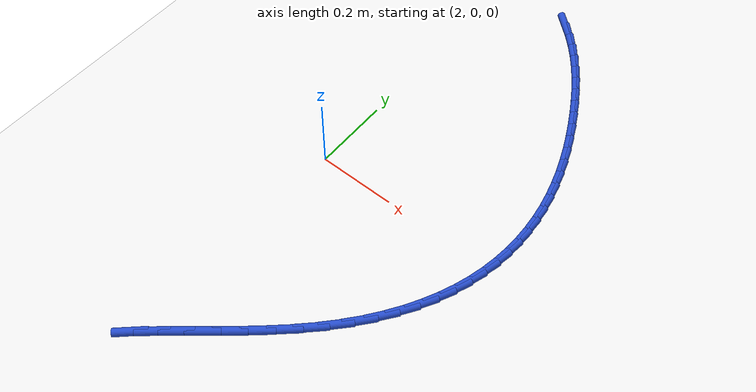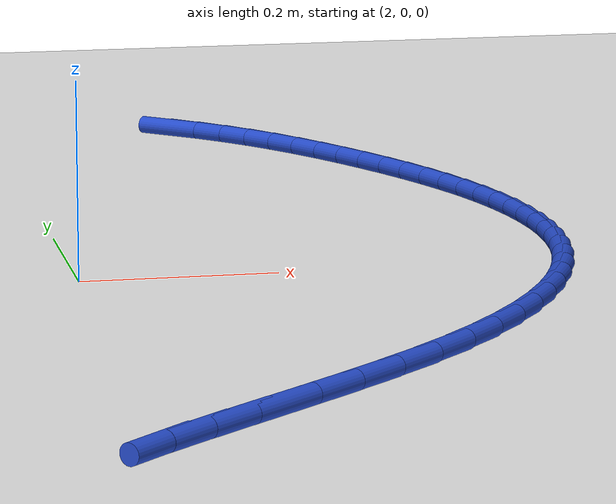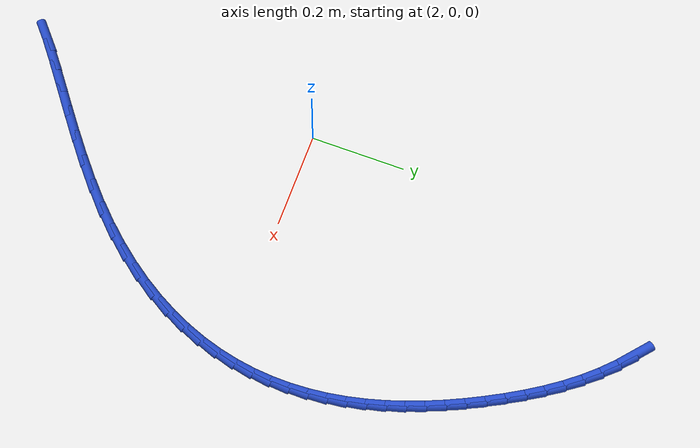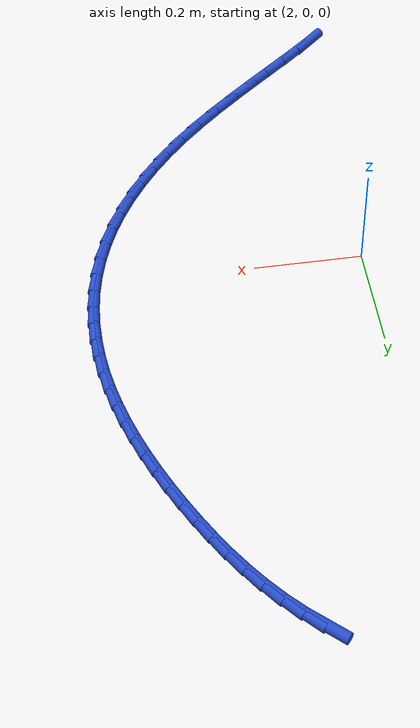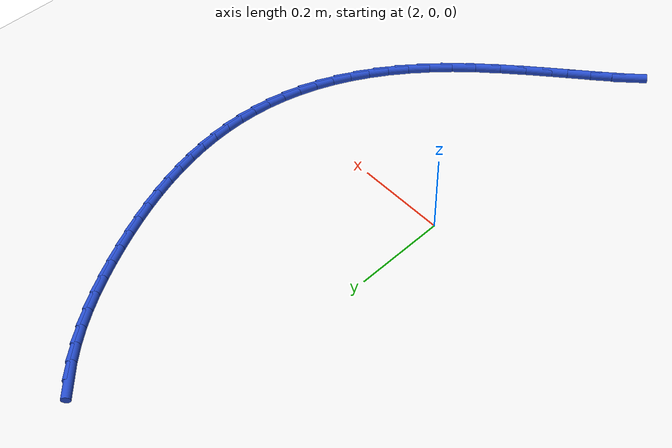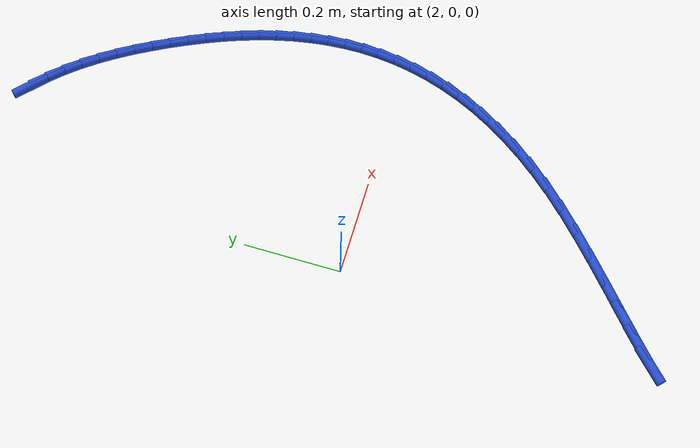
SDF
<sdf version="1.6">
 <world name="default">
  <model name="ground_plane">
   <static>1</static>
   <link name="link">
    <collision name="collision">
     <geometry><plane><normal>0 0 1</normal><size>100 100</size></plane></geometry>
     <surface><friction><ode><mu>100</mu><mu2>50</mu2></ode></friction></surface>
    </collision>
    <visual name="visual">
     <cast_shadows>0</cast_shadows>
     <geometry><plane><normal>0 0 1</normal><size>100 100</size></plane></geometry>
     <material>
      <script><uri>file://media/materials/scripts/gazebo.material</uri><name>Gazebo/WhiteGlow</name></script>
     </material>
    </visual>
   </link>
  </model>
  <model name="line">
   <link name="link_96">
    <pose>2.2099744098896 0.7450040336899306 0.01 0 1.57 -0.7302077535805038</pose>
    <collision name="collision">
     <geometry><cylinder><radius>0.01</radius><length>0.08</length></cylinder></geometry>
    </collision>
    <visual name="visual">
     <material>
      <script><name>Gazebo/Blue</name><uri>file://media/materials/scripts/gazebo.material</uri></script>
     </material>
     <geometry><cylinder><radius>0.01</radius><length>0.08</length></cylinder></geometry>
    </visual>
   </link>
   <link name="link_97">
    <pose>2.2385784189707834 0.7193951006987568 0.01 0 1.57 -0.7990456258027642</pose>
    <collision name="collision">
     <geometry><cylinder><radius>0.01</radius><length>0.08</length></cylinder></geometry>
    </collision>
    <visual name="visual">
     <material>
      <script><name>Gazebo/Blue</name><uri>file://media/materials/scripts/gazebo.material</uri></script>
     </material>
     <geometry><cylinder><radius>0.01</radius><length>0.08</length></cylinder></geometry>
    </visual>
   </link>
   <link name="link_98">
    <pose>2.265349913055908 0.691882723523531 0.01 0 1.57 -0.861361658678026</pose>
    <collision name="collision">
     <geometry><cylinder><radius>0.01</radius><length>0.08</length></cylinder></geometry>
    </collision>
    <visual name="visual">
     <material>
      <script><name>Gazebo/Blue</name><uri>file://media/materials/scripts/gazebo.material</uri></script>
     </material>
     <geometry><cylinder><radius>0.01</radius><length>0.08</length></cylinder></geometry>
    </visual>
   </link>
   <link name="link_99">
    <pose>2.2904118224949865 0.6626916201015031 0.01 0 1.57 -0.9171109996088366</pose>
    <collision name="collision">
     <geometry><cylinder><radius>0.01</radius><length>0.08</length></cylinder></geometry>
    </collision>
    <visual name="visual">
     <material>
      <script><name>Gazebo/Blue</name><uri>file://media/materials/scripts/gazebo.material</uri></script>
     </material>
     <geometry><cylinder><radius>0.01</radius><length>0.08</length></cylinder></geometry>
    </visual>
   </link>
   <link name="link_100">
    <pose>2.3138870776380314 0.6320465083699249 0.01 0 1.57 -0.9664267605133154</pose>
    <collision name="collision">
     <geometry><cylinder><radius>0.01</radius><length>0.08</length></cylinder></geometry>
    </collision>
    <visual name="visual">
     <material>
      <script><name>Gazebo/Blue</name><uri>file://media/materials/scripts/gazebo.material</uri></script>
     </material>
     <geometry><cylinder><radius>0.01</radius><length>0.08</length></cylinder></geometry>
    </visual>
   </link>
   <link name="link_101">
    <pose>2.3358986088350573 0.6001721062660461 0.01 0 1.57 -1.009546726760588</pose>
    <collision name="collision">
     <geometry><cylinder><radius>0.01</radius><length>0.08</length></cylinder></geometry>
    </collision>
    <visual name="visual">
     <material>
      <script><name>Gazebo/Blue</name><uri>file://media/materials/scripts/gazebo.material</uri></script>
     </material>
     <geometry><cylinder><radius>0.01</radius><length>0.08</length></cylinder></geometry>
    </visual>
   </link>
   <link name="link_102">
    <pose>2.356569346436075 0.567293131727118 0.01 0 1.57 -1.0467533460196503</pose>
    <collision name="collision">
     <geometry><cylinder><radius>0.01</radius><length>0.08</length></cylinder></geometry>
    </collision>
    <visual name="visual">
     <material>
      <script><name>Gazebo/Blue</name><uri>file://media/materials/scripts/gazebo.material</uri></script>
     </material>
     <geometry><cylinder><radius>0.01</radius><length>0.08</length></cylinder></geometry>
    </visual>
   </link>
   <link name="link_103">
    <pose>2.376022220791101 0.5336343026903909 0.01 0 1.57 -1.078332419767399</pose>
    <collision name="collision">
     <geometry><cylinder><radius>0.01</radius><length>0.08</length></cylinder></geometry>
    </collision>
    <visual name="visual">
     <material>
      <script><name>Gazebo/Blue</name><uri>file://media/materials/scripts/gazebo.material</uri></script>
     </material>
     <geometry><cylinder><radius>0.01</radius><length>0.08</length></cylinder></geometry>
    </visual>
   </link>
   <link name="link_104">
    <pose>2.3943800308982817 0.49942022516066953 0.01 0 1.57 -1.1065879782315884</pose>
    <collision name="collision">
     <geometry><cylinder><radius>0.01</radius><length>0.08</length></cylinder></geometry>
    </collision>
    <visual name="visual">
     <material>
      <script><name>Gazebo/Blue</name><uri>file://media/materials/scripts/gazebo.material</uri></script>
     </material>
     <geometry><cylinder><radius>0.01</radius><length>0.08</length></cylinder></geometry>
    </visual>
   </link>
   <link name="link_105">
    <pose>2.41170321765218 0.464822366230679 0.01 0 1.57 -1.1370400719894822</pose>
    <collision name="collision">
     <geometry><cylinder><radius>0.01</radius><length>0.08</length></cylinder></geometry>
    </collision>
    <visual name="visual">
     <material>
      <script><name>Gazebo/Blue</name><uri>file://media/materials/scripts/gazebo.material</uri></script>
     </material>
     <geometry><cylinder><radius>0.01</radius><length>0.08</length></cylinder></geometry>
    </visual>
   </link>
   <link name="link_106">
    <pose>2.427890326713249 0.42987423279045006 0.01 0 1.57 -1.170687186168735</pose>
    <collision name="collision">
     <geometry><cylinder><radius>0.01</radius><length>0.08</length></cylinder></geometry>
    </collision>
    <visual name="visual">
     <material>
      <script><name>Gazebo/Blue</name><uri>file://media/materials/scripts/gazebo.material</uri></script>
     </material>
     <geometry><cylinder><radius>0.01</radius><length>0.08</length></cylinder></geometry>
    </visual>
   </link>
   <link name="link_107">
    <pose>2.4428139708779084 0.3945872328510779 0.01 0 1.57 -1.2076665442976666</pose>
    <collision name="collision">
     <geometry><cylinder><radius>0.01</radius><length>0.08</length></cylinder></geometry>
    </collision>
    <visual name="visual">
     <material>
      <script><name>Gazebo/Blue</name><uri>file://media/materials/scripts/gazebo.material</uri></script>
     </material>
     <geometry><cylinder><radius>0.01</radius><length>0.08</length></cylinder></geometry>
    </visual>
   </link>
   <link name="link_108">
    <pose>2.4563467629425797 0.35897277442365755 0.01 0 1.57 -1.2481013349724457</pose>
    <collision name="collision">
     <geometry><cylinder><radius>0.01</radius><length>0.08</length></cylinder></geometry>
    </collision>
    <visual name="visual">
     <material>
      <script><name>Gazebo/Blue</name><uri>file://media/materials/scripts/gazebo.material</uri></script>
     </material>
     <geometry><cylinder><radius>0.01</radius><length>0.08</length></cylinder></geometry>
    </visual>
   </link>
   <link name="link_109">
    <pose>2.4683613157036826 0.3230422655192855 0.01 0 1.57 -1.292087820820157</pose>
    <collision name="collision">
     <geometry><cylinder><radius>0.01</radius><length>0.08</length></cylinder></geometry>
    </collision>
    <visual name="visual">
     <material>
      <script><name>Gazebo/Blue</name><uri>file://media/materials/scripts/gazebo.material</uri></script>
     </material>
     <geometry><cylinder><radius>0.01</radius><length>0.08</length></cylinder></geometry>
    </visual>
   </link>
   <link name="link_110">
    <pose>2.4787302419576376 0.2868071141490565 0.01 0 1.57 -1.3396797657786215</pose>
    <collision name="collision">
     <geometry><cylinder><radius>0.01</radius><length>0.08</length></cylinder></geometry>
    </collision>
    <visual name="visual">
     <material>
      <script><name>Gazebo/Blue</name><uri>file://media/materials/scripts/gazebo.material</uri></script>
     </material>
     <geometry><cylinder><radius>0.01</radius><length>0.08</length></cylinder></geometry>
    </visual>
   </link>
   <link name="link_111">
    <pose>2.487326154500865 0.250278728324067 0.01 0 1.57 -1.3908706225121452</pose>
    <collision name="collision">
     <geometry><cylinder><radius>0.01</radius><length>0.08</length></cylinder></geometry>
    </collision>
    <visual name="visual">
     <material>
      <script><name>Gazebo/Blue</name><uri>file://media/materials/scripts/gazebo.material</uri></script>
     </material>
     <geometry><cylinder><radius>0.01</radius><length>0.08</length></cylinder></geometry>
    </visual>
   </link>
   <link name="link_112">
    <pose>2.494021666129785 0.21346851605541162 0.01 0 1.57 -1.4455746005712309</pose>
    <collision name="collision">
     <geometry><cylinder><radius>0.01</radius><length>0.08</length></cylinder></geometry>
    </collision>
    <visual name="visual">
     <material>
      <script><name>Gazebo/Blue</name><uri>file://media/materials/scripts/gazebo.material</uri></script>
     </material>
     <geometry><cylinder><radius>0.01</radius><length>0.08</length></cylinder></geometry>
    </visual>
   </link>
   <link name="link_113">
    <pose>2.4986893896408193 0.17638788535418692 0.01 0 1.57 -1.5036085803015755</pose>
    <collision name="collision">
     <geometry><cylinder><radius>0.01</radius><length>0.08</length></cylinder></geometry>
    </collision>
    <visual name="visual">
     <material>
      <script><name>Gazebo/Blue</name><uri>file://media/materials/scripts/gazebo.material</uri></script>
     </material>
     <geometry><cylinder><radius>0.01</radius><length>0.08</length></cylinder></geometry>
    </visual>
   </link>
   <link name="link_114">
    <pose>2.501201937830386 0.13904824423148737 0.01 0 1.57 -1.5646776872553143</pose>
    <collision name="collision">
     <geometry><cylinder><radius>0.01</radius><length>0.08</length></cylinder></geometry>
    </collision>
    <visual name="visual">
     <material>
      <script><name>Gazebo/Blue</name><uri>file://media/materials/scripts/gazebo.material</uri></script>
     </material>
     <geometry><cylinder><radius>0.01</radius><length>0.08</length></cylinder></geometry>
    </visual>
   </link>
   <link name="link_115">
    <pose>2.501431923494907 0.1014610006984096 0.01 0 1.57 1.5132247478090395</pose>
    <collision name="collision">
     <geometry><cylinder><radius>0.01</radius><length>0.08</length></cylinder></geometry>
    </collision>
    <visual name="visual">
     <material>
      <script><name>Gazebo/Blue</name><uri>file://media/materials/scripts/gazebo.material</uri></script>
     </material>
     <geometry><cylinder><radius>0.01</radius><length>0.08</length></cylinder></geometry>
    </visual>
   </link>
   <link name="link_116">
    <pose>2.499251959430802 0.06363756276604876 0.01 0 1.57 1.4474436394096408</pose>
    <collision name="collision">
     <geometry><cylinder><radius>0.01</radius><length>0.08</length></cylinder></geometry>
    </collision>
    <visual name="visual">
     <material>
      <script><name>Gazebo/Blue</name><uri>file://media/materials/scripts/gazebo.material</uri></script>
     </material>
     <geometry><cylinder><radius>0.01</radius><length>0.08</length></cylinder></geometry>
    </visual>
   </link>
   <link name="link_117">
    <pose>2.4945346584344925 0.025589338445499384 0.01 0 1.57 1.380202598604492</pose>
    <collision name="collision">
     <geometry><cylinder><radius>0.01</radius><length>0.08</length></cylinder></geometry>
    </collision>
    <visual name="visual">
     <material>
      <script><name>Gazebo/Blue</name><uri>file://media/materials/scripts/gazebo.material</uri></script>
     </material>
     <geometry><cylinder><radius>0.01</radius><length>0.08</length></cylinder></geometry>
    </visual>
   </link>
   <link name="link_118">
    <pose>2.487152633302397 -0.012672264252141019 0.01 0 1.57 1.3122051764016978</pose>
    <collision name="collision">
     <geometry><cylinder><radius>0.01</radius><length>0.08</length></cylinder></geometry>
    </collision>
    <visual name="visual">
     <material>
      <script><name>Gazebo/Blue</name><uri>file://media/materials/scripts/gazebo.material</uri></script>
     </material>
     <geometry><cylinder><radius>0.01</radius><length>0.08</length></cylinder></geometry>
    </visual>
   </link>
   <link name="link_119">
    <pose>2.476978496830938 -0.051135837315777866 0.01 0 1.57 1.2441892411514186</pose>
    <collision name="collision">
     <geometry><cylinder><radius>0.01</radius><length>0.08</length></cylinder></geometry>
    </collision>
    <visual name="visual">
     <material>
      <script><name>Gazebo/Blue</name><uri>file://media/materials/scripts/gazebo.material</uri></script>
     </material>
     <geometry><cylinder><radius>0.01</radius><length>0.08</length></cylinder></geometry>
    </visual>
   </link>
   <link name="link_120">
    <pose>2.4638848618165357 -0.0897899727343156 0.01 0 1.57 1.1768835640171562</pose>
    <collision name="collision">
     <geometry><cylinder><radius>0.01</radius><length>0.08</length></cylinder></geometry>
    </collision>
    <visual name="visual">
     <material>
      <script><name>Gazebo/Blue</name><uri>file://media/materials/scripts/gazebo.material</uri></script>
     </material>
     <geometry><cylinder><radius>0.01</radius><length>0.08</length></cylinder></geometry>
    </visual>
   </link>
   <link name="link_121">
    <pose>2.447744341055608 -0.12862326249665848 0.01 0 1.57 1.1109655985138451</pose>
    <collision name="collision">
     <geometry><cylinder><radius>0.01</radius><length>0.08</length></cylinder></geometry>
    </collision>
    <visual name="visual">
     <material>
      <script><name>Gazebo/Blue</name><uri>file://media/materials/scripts/gazebo.material</uri></script>
     </material>
     <geometry><cylinder><radius>0.01</radius><length>0.08</length></cylinder></geometry>
    </visual>
   </link>
   <link name="link_122">
    <pose>2.4284295473445776 -0.16762429859171218 0.01 0 1.57 1.0470264661426645</pose>
    <collision name="collision">
     <geometry><cylinder><radius>0.01</radius><length>0.08</length></cylinder></geometry>
    </collision>
    <visual name="visual">
     <material>
      <script><name>Gazebo/Blue</name><uri>file://media/materials/scripts/gazebo.material</uri></script>
     </material>
     <geometry><cylinder><radius>0.01</radius><length>0.08</length></cylinder></geometry>
    </visual>
   </link>
   <link name="link_123">
    <pose>2.405813093479864 -0.20678167300837902 0.01 0 1.57 0.985547313494991</pose>
    <collision name="collision">
     <geometry><cylinder><radius>0.01</radius><length>0.08</length></cylinder></geometry>
    </collision>
    <visual name="visual">
     <material>
      <script><name>Gazebo/Blue</name><uri>file://media/materials/scripts/gazebo.material</uri></script>
     </material>
     <geometry><cylinder><radius>0.01</radius><length>0.08</length></cylinder></geometry>
    </visual>
   </link>
   <link name="link_124">
    <pose>2.3797675922578883 -0.24608397773556434 0.01 0 1.57 0.9268885564496673</pose>
    <collision name="collision">
     <geometry><cylinder><radius>0.01</radius><length>0.08</length></cylinder></geometry>
    </collision>
    <visual name="visual">
     <material>
      <script><name>Gazebo/Blue</name><uri>file://media/materials/scripts/gazebo.material</uri></script>
     </material>
     <geometry><cylinder><radius>0.01</radius><length>0.08</length></cylinder></geometry>
    </visual>
   </link>
   <link name="link_125">
    <pose>2.35016565647507 -0.28551980476217265 0.01 0 1.57 0.8712909964603617</pose>
    <collision name="collision">
     <geometry><cylinder><radius>0.01</radius><length>0.08</length></cylinder></geometry>
    </collision>
    <visual name="visual">
     <material>
      <script><name>Gazebo/Blue</name><uri>file://media/materials/scripts/gazebo.material</uri></script>
     </material>
     <geometry><cylinder><radius>0.01</radius><length>0.08</length></cylinder></geometry>
    </visual>
   </link>
   <link name="link_126">
    <pose>2.316879898927829 -0.32507774607710965 0.01 0 1.57 0.8188860694916847</pose>
    <collision name="collision">
     <geometry><cylinder><radius>0.01</radius><length>0.08</length></cylinder></geometry>
    </collision>
    <visual name="visual">
     <material>
      <script><name>Gazebo/Blue</name><uri>file://media/materials/scripts/gazebo.material</uri></script>
     </material>
     <geometry><cylinder><radius>0.01</radius><length>0.08</length></cylinder></geometry>
    </visual>
   </link>
   <link name="link_127">
    <pose>2.279782932412587 -0.3647463936692772 0.01 0 1.57 0.7708265427075975</pose>
    <collision name="collision">
     <geometry><cylinder><radius>0.01</radius><length>0.08</length></cylinder></geometry>
    </collision>
    <visual name="visual">
     <material>
      <script><name>Gazebo/Blue</name><uri>file://media/materials/scripts/gazebo.material</uri></script>
     </material>
     <geometry><cylinder><radius>0.01</radius><length>0.08</length></cylinder></geometry>
    </visual>
   </link>
   <link name="link_128">
    <pose>2.2388767747631264 -0.40447745320489287 0.01 0 1.57 0.7341899945575331</pose>
    <collision name="collision">
     <geometry><cylinder><radius>0.01</radius><length>0.08</length></cylinder></geometry>
    </collision>
    <visual name="visual">
     <material>
      <script><name>Gazebo/Blue</name><uri>file://media/materials/scripts/gazebo.material</uri></script>
     </material>
     <geometry><cylinder><radius>0.01</radius><length>0.08</length></cylinder></geometry>
    </visual>
   </link>
   <link name="link_129">
    <pose>2.1951485180016173 -0.44394183939236975 0.01 0 1.57 0.7095655315757169</pose>
    <collision name="collision">
     <geometry><cylinder><radius>0.01</radius><length>0.08</length></cylinder></geometry>
    </collision>
    <visual name="visual">
     <material>
      <script><name>Gazebo/Blue</name><uri>file://media/materials/scripts/gazebo.material</uri></script>
     </material>
     <geometry><cylinder><radius>0.01</radius><length>0.08</length></cylinder></geometry>
    </visual>
   </link>
   <link name="link_130">
    <pose>2.150038249174762 -0.48268134274996904 0.01 0 1.57 0.6949246528252814</pose>
    <collision name="collision">
     <geometry><cylinder><radius>0.01</radius><length>0.08</length></cylinder></geometry>
    </collision>
    <visual name="visual">
     <material>
      <script><name>Gazebo/Blue</name><uri>file://media/materials/scripts/gazebo.material</uri></script>
     </material>
     <geometry><cylinder><radius>0.01</radius><length>0.08</length></cylinder></geometry>
    </visual>
   </link>
   <link name="link_131">
    <pose>2.1049884500206355 -0.5202370711999673 0.01 0 1.57 0.6896211871819181</pose>
    <collision name="collision">
     <geometry><cylinder><radius>0.01</radius><length>0.08</length></cylinder></geometry>
    </collision>
    <visual name="visual">
     <material>
      <script><name>Gazebo/Blue</name><uri>file://media/materials/scripts/gazebo.material</uri></script>
     </material>
     <geometry><cylinder><radius>0.01</radius><length>0.08</length></cylinder></geometry>
    </visual>
   </link>
   <link name="link_132">
    <pose>2.0614416022773185 -0.5561501326646391 0.01 0 1.57 0.6944037234169373</pose>
    <collision name="collision">
     <geometry><cylinder><radius>0.01</radius><length>0.08</length></cylinder></geometry>
    </collision>
    <visual name="visual">
     <material>
      <script><name>Gazebo/Blue</name><uri>file://media/materials/scripts/gazebo.material</uri></script>
     </material>
     <geometry><cylinder><radius>0.01</radius><length>0.08</length></cylinder></geometry>
    </visual>
   </link>
   <link name="link_133">
    <pose>2.020840187682887 -0.5899616350662613 0.01 0 1.57 0.7119740099260802</pose>
    <collision name="collision">
     <geometry><cylinder><radius>0.01</radius><length>0.08</length></cylinder></geometry>
    </collision>
    <visual name="visual">
     <material>
      <script><name>Gazebo/Blue</name><uri>file://media/materials/scripts/gazebo.material</uri></script>
     </material>
     <geometry><cylinder><radius>0.01</radius><length>0.08</length></cylinder></geometry>
    </visual>
   </link>
   <link name="link_134">
    <pose>1.984626687975418 -0.6212126863271101 0.01 0 1.57 0.7487106833287623</pose>
    <collision name="collision">
     <geometry><cylinder><radius>0.01</radius><length>0.08</length></cylinder></geometry>
    </collision>
    <visual name="visual">
     <material>
      <script><name>Gazebo/Blue</name><uri>file://media/materials/scripts/gazebo.material</uri></script>
     </material>
     <geometry><cylinder><radius>0.01</radius><length>0.08</length></cylinder></geometry>
    </visual>
   </link>
  </model>
 </world>
</sdf>
